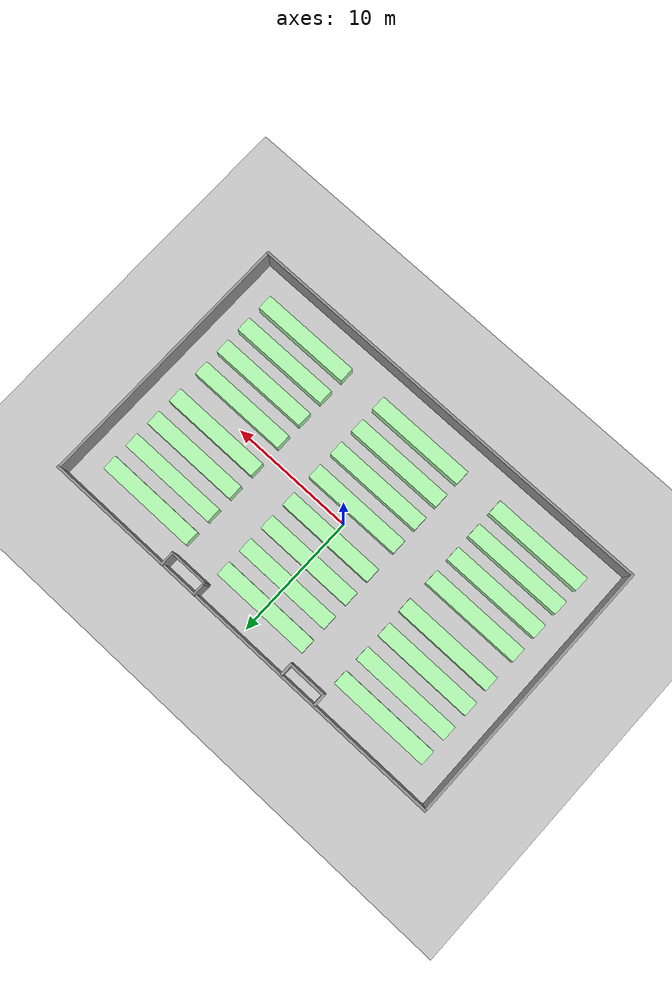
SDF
<sdf version="1.7">
 <world name="default">
  <light name="sun" type="directional">
   <pose>0 0 10 0 -0 0</pose>
   <diffuse>0.8 0.8 0.8 1</diffuse>
   <specular>0.2 0.2 0.2 1</specular>
   <attenuation>
    <range>1000</range>
    <constant>0.9</constant>
    <linear>0.01</linear>
    <quadratic>0.001</quadratic>
   </attenuation>
   <direction>-0.5 0.1 -0.9</direction>
   <spot><inner_angle>0</inner_angle><outer_angle>0</outer_angle><falloff>0</falloff></spot>
  </light>
  <model name="ground_plane">
   <static>1</static>
   <link name="link">
    <collision name="collision">
     <geometry><plane><normal>0 0 1</normal><size>100 100</size></plane></geometry>
     <surface>
      <contact><collide_bitmask>65535</collide_bitmask></contact>
      <friction><ode><mu>100</mu><mu2>50</mu2></ode></friction>
     </surface>
    </collision>
    <visual name="visual">
     <cast_shadows>0</cast_shadows>
     <geometry><plane><normal>0 0 1</normal><size>100 100</size></plane></geometry>
     <material>
      <script><uri>file://media/materials/scripts/gazebo.material</uri><name>Gazebo/Grey</name></script>
     </material>
    </visual>
   </link>
  </model>
  <gravity>0 0 -9.8</gravity>
  <magnetic_field>6e-06 2.3e-05 -4.2e-05</magnetic_field>
  <atmosphere type="adiabatic"/>
  <physics type="ode">
   <max_step_size>0.001</max_step_size>
   <real_time_factor>1</real_time_factor>
   <real_time_update_rate>1000</real_time_update_rate>
  </physics>
  <scene><ambient>0.4 0.4 0.4 1</ambient><background>0.7 0.7 0.7 1</background><shadows>1</shadows></scene>
  <spherical_coordinates>
   <surface_model>EARTH_WGS84</surface_model>
   <latitude_deg>0</latitude_deg>
   <longitude_deg>0</longitude_deg>
   <elevation>0</elevation>
   <heading_deg>0</heading_deg>
  </spherical_coordinates>
  <model name="Greenhouse_layout">
   <pose>0.020114 0 0 0 -0 0</pose>
   <link name="Wall_0">
    <collision name="Wall_0_Collision">
     <geometry><box><size>34.2 0.2 2</size></box></geometry>
     <pose>0 0 1 0 -0 0</pose>
    </collision>
    <visual name="Wall_0_Visual">
     <pose>0 0 1 0 -0 0</pose>
     <geometry><box><size>34.2 0.2 2</size></box></geometry>
     <material>
      <script><uri>file://media/materials/scripts/gazebo.material</uri><name>Gazebo/Grey</name></script>
      <ambient>1 1 1 1</ambient>
     </material>
     <meta><layer>0</layer></meta>
    </visual>
    <pose>-0.020114 -10.55 0 0 -0 0</pose>
   </link>
   <link name="Wall_14">
    <collision name="Wall_14_Collision">
     <geometry><box><size>1.05 0.2 2.5</size></box></geometry>
     <pose>0 0 1.25 0 -0 0</pose>
    </collision>
    <visual name="Wall_14_Visual">
     <pose>0 0 1.25 0 -0 0</pose>
     <geometry><box><size>1.05 0.2 2.5</size></box></geometry>
     <material>
      <script><uri>file://media/materials/scripts/gazebo.material</uri><name>Gazebo/Grey</name></script>
      <ambient>1 1 1 1</ambient>
     </material>
     <meta><layer>0</layer></meta>
    </visual>
    <pose>-7.00262 9.975 0 0 -0 1.5708</pose>
   </link>
   <link name="Wall_16">
    <collision name="Wall_16_Collision">
     <geometry><box><size>1.05 0.2 2.5</size></box></geometry>
     <pose>0 0 1.25 0 -0 0</pose>
    </collision>
    <visual name="Wall_16_Visual">
     <pose>0 0 1.25 0 -0 0</pose>
     <geometry><box><size>1.05 0.2 2.5</size></box></geometry>
     <material>
      <script><uri>file://media/materials/scripts/gazebo.material</uri><name>Gazebo/Grey</name></script>
      <ambient>1 1 1 1</ambient>
     </material>
     <meta><layer>0</layer></meta>
    </visual>
    <pose>-4.02011 9.975 0 0 -0 1.5708</pose>
   </link>
   <link name="Wall_18">
    <collision name="Wall_18_Collision">
     <geometry><box><size>3.15 0.15 2.5</size></box></geometry>
     <pose>0 0 1.25 0 -0 0</pose>
    </collision>
    <visual name="Wall_18_Visual">
     <pose>0 0 1.25 0 -0 0</pose>
     <geometry><box><size>3.15 0.15 2.5</size></box></geometry>
     <material>
      <script><uri>file://media/materials/scripts/gazebo.material</uri><name>Gazebo/Grey</name></script>
      <ambient>1 1 1 1</ambient>
     </material>
     <meta><layer>0</layer></meta>
    </visual>
    <pose>5.49738 9.5 0 0 -0 0</pose>
   </link>
   <link name="Wall_2">
    <collision name="Wall_2_Collision">
     <geometry><box><size>21.15 0.2 2</size></box></geometry>
     <pose>0 0 1 0 -0 0</pose>
    </collision>
    <visual name="Wall_2_Visual">
     <pose>0 0 1 0 -0 0</pose>
     <geometry><box><size>21.15 0.2 2</size></box></geometry>
     <material>
      <script><uri>file://media/materials/scripts/gazebo.material</uri><name>Gazebo/Grey</name></script>
      <ambient>1 1 1 1</ambient>
     </material>
     <meta><layer>0</layer></meta>
    </visual>
    <pose>-17.0201 -0.075 0 0 -0 1.5708</pose>
   </link>
   <link name="Wall_20">
    <collision name="Wall_20_Collision">
     <geometry><box><size>0.15 0.15 2.5</size></box></geometry>
     <pose>0 0 1.25 0 -0 0</pose>
    </collision>
    <visual name="Wall_20_Visual">
     <pose>0 0 1.25 0 -0 0</pose>
     <geometry><box><size>0.15 0.15 2.5</size></box></geometry>
     <material>
      <script><uri>file://media/materials/scripts/gazebo.material</uri><name>Gazebo/Grey</name></script>
      <ambient>1 1 1 1</ambient>
     </material>
     <meta><layer>0</layer></meta>
    </visual>
    <pose>3.97989 9.55 0 0 -0 0</pose>
   </link>
   <link name="Wall_4">
    <collision name="Wall_4_Collision">
     <geometry><box><size>34.2005 0.2 2</size></box></geometry>
     <pose>0 0 1 0 -0 0</pose>
    </collision>
    <visual name="Wall_4_Visual">
     <pose>0 0 1 0 -0 0</pose>
     <geometry><box><size>34.2005 0.2 2</size></box></geometry>
     <material>
      <script><uri>file://media/materials/scripts/gazebo.material</uri><name>Gazebo/Grey</name></script>
      <ambient>1 1 1 1</ambient>
     </material>
     <meta><layer>0</layer></meta>
    </visual>
    <pose>0.019886 10.55 0 0 -0 0</pose>
   </link>
   <link name="Wall_49">
    <collision name="Wall_49_Collision">
     <geometry><box><size>1.15 0.15 2.5</size></box></geometry>
     <pose>0 0 1.25 0 -0 0</pose>
    </collision>
    <visual name="Wall_49_Visual">
     <pose>0 0 1.25 0 -0 0</pose>
     <geometry><box><size>1.15 0.15 2.5</size></box></geometry>
     <material>
      <script><uri>file://media/materials/scripts/gazebo.material</uri><name>Gazebo/Grey</name></script>
      <ambient>1 1 1 1</ambient>
     </material>
     <meta><layer>0</layer></meta>
    </visual>
    <pose>6.97989 10.05 0 0 -0 1.5708</pose>
   </link>
   <link name="Wall_51">
    <collision name="Wall_51_Collision">
     <geometry><box><size>1.15 0.15 2.5</size></box></geometry>
     <pose>0 0 1.25 0 -0 0</pose>
    </collision>
    <visual name="Wall_51_Visual">
     <pose>0 0 1.25 0 -0 0</pose>
     <geometry><box><size>1.15 0.15 2.5</size></box></geometry>
     <material>
      <script><uri>file://media/materials/scripts/gazebo.material</uri><name>Gazebo/Grey</name></script>
      <ambient>1 1 1 1</ambient>
     </material>
     <meta><layer>0</layer></meta>
    </visual>
    <pose>3.97989 10.05 0 0 -0 1.5708</pose>
   </link>
   <link name="Wall_6">
    <collision name="Wall_6_Collision">
     <geometry><box><size>21.3 0.2 2</size></box></geometry>
     <pose>0 0 1 0 -0 0</pose>
    </collision>
    <visual name="Wall_6_Visual">
     <pose>0 0 1 0 -0 0</pose>
     <geometry><box><size>21.3 0.2 2</size></box></geometry>
     <material>
      <script><uri>file://media/materials/scripts/gazebo.material</uri><name>Gazebo/Grey</name></script>
      <ambient>1 1 1 1</ambient>
     </material>
     <meta><layer>0</layer></meta>
    </visual>
    <pose>16.9799 0 0 0 -0 1.5708</pose>
   </link>
   <link name="Wall_8">
    <collision name="Wall_8_Collision">
     <geometry><box><size>3.16502 0.2 2.5</size></box></geometry>
     <pose>0 0 1.25 0 -0 0</pose>
    </collision>
    <visual name="Wall_8_Visual">
     <pose>0 0 1.25 0 -0 0</pose>
     <geometry><box><size>3.16502 0.2 2.5</size></box></geometry>
     <material>
      <script><uri>file://media/materials/scripts/gazebo.material</uri><name>Gazebo/Grey</name></script>
      <ambient>1 1 1 1</ambient>
     </material>
     <meta><layer>0</layer></meta>
    </visual>
    <pose>-5.50262 9.55 0 0 -0 0</pose>
   </link>
   <static>1</static>
  </model>
  <model name="carril_normal">
   <link name="link_0">
    <inertial>
     <mass>100</mass>
     <inertia><ixx>16.6667</ixx><ixy>0</ixy><ixz>0</ixz><iyy>16.6667</iyy><iyz>0</iyz><izz>16.6667</izz></inertia>
    </inertial>
    <visual name="visual">
     <geometry><box><size>8 1.2 1</size></box></geometry>
     <material>
      <lighting>1</lighting>
      <script><uri>file://media/materials/scripts/gazebo.material</uri><name>Gazebo/Grey</name></script>
      <shader type="pixel"><normal_map>__default__</normal_map></shader>
      <ambient>0.3 0.3 0.3 1</ambient>
      <diffuse>0.7 1 0.7 1</diffuse>
      <specular>0.01 1 0.01 1</specular>
      <emissive>0 1 0 1</emissive>
     </material>
    </visual>
    <collision name="collision">
     <geometry><box><size>8 1.2 1</size></box></geometry>
     <surface>
      <friction>
       <ode><mu>1</mu><mu2>1</mu2><fdir1>0 0 0</fdir1><slip1>0</slip1><slip2>0</slip2></ode>
       <torsional>
        <coefficient>1</coefficient>
        <patch_radius>0</patch_radius>
        <surface_radius>0</surface_radius>
        <use_patch_radius>1</use_patch_radius>
        <ode><slip>0</slip></ode>
       </torsional>
      </friction>
      <bounce><restitution_coefficient>0</restitution_coefficient><threshold>1e+06</threshold></bounce>
      <contact>
       <collide_without_contact>0</collide_without_contact>
       <collide_without_contact_bitmask>1</collide_without_contact_bitmask>
       <collide_bitmask>1</collide_bitmask>
       <ode>
        <soft_cfm>0</soft_cfm>
        <soft_erp>0.2</soft_erp>
        <kp>1e+13</kp>
        <kd>1</kd>
        <max_vel>0.01</max_vel>
        <min_depth>0</min_depth>
       </ode>
       <bullet>
        <split_impulse>1</split_impulse>
        <split_impulse_penetration_threshold>-0.01</split_impulse_penetration_threshold>
        <soft_cfm>0</soft_cfm>
        <soft_erp>0.2</soft_erp>
        <kp>1e+13</kp>
        <kd>1</kd>
       </bullet>
      </contact>
     </surface>
    </collision>
   </link>
   <static>0</static>
   <pose>-11 -7.95 0.5 0 -0 0</pose>
  </model>
  <model name="carril_normal_clone">
   <link name="link_0">
    <inertial>
     <mass>100</mass>
     <inertia><ixx>16.6667</ixx><ixy>0</ixy><ixz>0</ixz><iyy>16.6667</iyy><iyz>0</iyz><izz>16.6667</izz></inertia>
    </inertial>
    <visual name="visual">
     <geometry><box><size>8 1.2 1</size></box></geometry>
     <material>
      <lighting>1</lighting>
      <script><uri>file://media/materials/scripts/gazebo.material</uri><name>Gazebo/Grey</name></script>
      <shader type="pixel"><normal_map>__default__</normal_map></shader>
      <ambient>0.3 0.3 0.3 1</ambient>
      <diffuse>0.7 1 0.7 1</diffuse>
      <specular>0.01 1 0.01 1</specular>
      <emissive>0 1 0 1</emissive>
     </material>
    </visual>
    <collision name="collision">
     <geometry><box><size>8 1.2 1</size></box></geometry>
     <surface>
      <friction>
       <ode><mu>1</mu><mu2>1</mu2><fdir1>0 0 0</fdir1><slip1>0</slip1><slip2>0</slip2></ode>
       <torsional>
        <coefficient>1</coefficient>
        <patch_radius>0</patch_radius>
        <surface_radius>0</surface_radius>
        <use_patch_radius>1</use_patch_radius>
        <ode><slip>0</slip></ode>
       </torsional>
      </friction>
      <bounce><restitution_coefficient>0</restitution_coefficient><threshold>1e+06</threshold></bounce>
      <contact>
       <collide_without_contact>0</collide_without_contact>
       <collide_without_contact_bitmask>1</collide_without_contact_bitmask>
       <collide_bitmask>1</collide_bitmask>
       <ode>
        <soft_cfm>0</soft_cfm>
        <soft_erp>0.2</soft_erp>
        <kp>1e+13</kp>
        <kd>1</kd>
        <max_vel>0.01</max_vel>
        <min_depth>0</min_depth>
       </ode>
       <bullet>
        <split_impulse>1</split_impulse>
        <split_impulse_penetration_threshold>-0.01</split_impulse_penetration_threshold>
        <soft_cfm>0</soft_cfm>
        <soft_erp>0.2</soft_erp>
        <kp>1e+13</kp>
        <kd>1</kd>
       </bullet>
      </contact>
     </surface>
    </collision>
   </link>
   <static>0</static>
   <pose>-11 7.95 0.5 0 -0 0</pose>
  </model>
  <model name="carril_normal_clone_0">
   <link name="link_0">
    <inertial>
     <mass>100</mass>
     <inertia><ixx>16.6667</ixx><ixy>0</ixy><ixz>0</ixz><iyy>16.6667</iyy><iyz>0</iyz><izz>16.6667</izz></inertia>
    </inertial>
    <visual name="visual">
     <geometry><box><size>8 1.2 1</size></box></geometry>
     <material>
      <lighting>1</lighting>
      <script><uri>file://media/materials/scripts/gazebo.material</uri><name>Gazebo/Grey</name></script>
      <shader type="pixel"><normal_map>__default__</normal_map></shader>
      <ambient>0.3 0.3 0.3 1</ambient>
      <diffuse>0.7 1 0.7 1</diffuse>
      <specular>0.01 1 0.01 1</specular>
      <emissive>0 1 0 1</emissive>
     </material>
    </visual>
    <collision name="collision">
     <geometry><box><size>8 1.2 1</size></box></geometry>
     <surface>
      <friction>
       <ode><mu>1</mu><mu2>1</mu2><fdir1>0 0 0</fdir1><slip1>0</slip1><slip2>0</slip2></ode>
       <torsional>
        <coefficient>1</coefficient>
        <patch_radius>0</patch_radius>
        <surface_radius>0</surface_radius>
        <use_patch_radius>1</use_patch_radius>
        <ode><slip>0</slip></ode>
       </torsional>
      </friction>
      <bounce><restitution_coefficient>0</restitution_coefficient><threshold>1e+06</threshold></bounce>
      <contact>
       <collide_without_contact>0</collide_without_contact>
       <collide_without_contact_bitmask>1</collide_without_contact_bitmask>
       <collide_bitmask>1</collide_bitmask>
       <ode>
        <soft_cfm>0</soft_cfm>
        <soft_erp>0.2</soft_erp>
        <kp>1e+13</kp>
        <kd>1</kd>
        <max_vel>0.01</max_vel>
        <min_depth>0</min_depth>
       </ode>
       <bullet>
        <split_impulse>1</split_impulse>
        <split_impulse_penetration_threshold>-0.01</split_impulse_penetration_threshold>
        <soft_cfm>0</soft_cfm>
        <soft_erp>0.2</soft_erp>
        <kp>1e+13</kp>
        <kd>1</kd>
       </bullet>
      </contact>
     </surface>
    </collision>
   </link>
   <static>0</static>
   <pose>-11 5.75 0.5 0 -0 0</pose>
  </model>
  <model name="carril_normal_clone_0_clone">
   <link name="link_0">
    <inertial>
     <mass>100</mass>
     <inertia><ixx>16.6667</ixx><ixy>0</ixy><ixz>0</ixz><iyy>16.6667</iyy><iyz>0</iyz><izz>16.6667</izz></inertia>
    </inertial>
    <visual name="visual">
     <geometry><box><size>8 1.2 1</size></box></geometry>
     <material>
      <lighting>1</lighting>
      <script><uri>file://media/materials/scripts/gazebo.material</uri><name>Gazebo/Grey</name></script>
      <shader type="pixel"><normal_map>__default__</normal_map></shader>
      <ambient>0.3 0.3 0.3 1</ambient>
      <diffuse>0.7 1 0.7 1</diffuse>
      <specular>0.01 1 0.01 1</specular>
      <emissive>0 1 0 1</emissive>
     </material>
    </visual>
    <collision name="collision">
     <geometry><box><size>8 1.2 1</size></box></geometry>
     <surface>
      <friction>
       <ode><mu>1</mu><mu2>1</mu2><fdir1>0 0 0</fdir1><slip1>0</slip1><slip2>0</slip2></ode>
       <torsional>
        <coefficient>1</coefficient>
        <patch_radius>0</patch_radius>
        <surface_radius>0</surface_radius>
        <use_patch_radius>1</use_patch_radius>
        <ode><slip>0</slip></ode>
       </torsional>
      </friction>
      <bounce><restitution_coefficient>0</restitution_coefficient><threshold>1e+06</threshold></bounce>
      <contact>
       <collide_without_contact>0</collide_without_contact>
       <collide_without_contact_bitmask>1</collide_without_contact_bitmask>
       <collide_bitmask>1</collide_bitmask>
       <ode>
        <soft_cfm>0</soft_cfm>
        <soft_erp>0.2</soft_erp>
        <kp>1e+13</kp>
        <kd>1</kd>
        <max_vel>0.01</max_vel>
        <min_depth>0</min_depth>
       </ode>
       <bullet>
        <split_impulse>1</split_impulse>
        <split_impulse_penetration_threshold>-0.01</split_impulse_penetration_threshold>
        <soft_cfm>0</soft_cfm>
        <soft_erp>0.2</soft_erp>
        <kp>1e+13</kp>
        <kd>1</kd>
       </bullet>
      </contact>
     </surface>
    </collision>
   </link>
   <static>0</static>
   <pose>-11 3.55 0.5 0 -0 0</pose>
  </model>
  <model name="carril_normal_clone_0_clone_clone">
   <link name="link_0">
    <inertial>
     <mass>100</mass>
     <inertia><ixx>16.6667</ixx><ixy>0</ixy><ixz>0</ixz><iyy>16.6667</iyy><iyz>0</iyz><izz>16.6667</izz></inertia>
    </inertial>
    <visual name="visual">
     <geometry><box><size>8 1.2 1</size></box></geometry>
     <material>
      <lighting>1</lighting>
      <script><uri>file://media/materials/scripts/gazebo.material</uri><name>Gazebo/Grey</name></script>
      <shader type="pixel"><normal_map>__default__</normal_map></shader>
      <ambient>0.3 0.3 0.3 1</ambient>
      <diffuse>0.7 1 0.7 1</diffuse>
      <specular>0.01 1 0.01 1</specular>
      <emissive>0 1 0 1</emissive>
     </material>
    </visual>
    <collision name="collision">
     <geometry><box><size>8 1.2 1</size></box></geometry>
     <surface>
      <friction>
       <ode><mu>1</mu><mu2>1</mu2><fdir1>0 0 0</fdir1><slip1>0</slip1><slip2>0</slip2></ode>
       <torsional>
        <coefficient>1</coefficient>
        <patch_radius>0</patch_radius>
        <surface_radius>0</surface_radius>
        <use_patch_radius>1</use_patch_radius>
        <ode><slip>0</slip></ode>
       </torsional>
      </friction>
      <bounce><restitution_coefficient>0</restitution_coefficient><threshold>1e+06</threshold></bounce>
      <contact>
       <collide_without_contact>0</collide_without_contact>
       <collide_without_contact_bitmask>1</collide_without_contact_bitmask>
       <collide_bitmask>1</collide_bitmask>
       <ode>
        <soft_cfm>0</soft_cfm>
        <soft_erp>0.2</soft_erp>
        <kp>1e+13</kp>
        <kd>1</kd>
        <max_vel>0.01</max_vel>
        <min_depth>0</min_depth>
       </ode>
       <bullet>
        <split_impulse>1</split_impulse>
        <split_impulse_penetration_threshold>-0.01</split_impulse_penetration_threshold>
        <soft_cfm>0</soft_cfm>
        <soft_erp>0.2</soft_erp>
        <kp>1e+13</kp>
        <kd>1</kd>
       </bullet>
      </contact>
     </surface>
    </collision>
   </link>
   <static>0</static>
   <pose>-10.9264 1.35 0.5 0 -0 0</pose>
  </model>
  <model name="carril_normal_clone_0_clone_clone_clone">
   <link name="link_0">
    <inertial>
     <mass>100</mass>
     <inertia><ixx>16.6667</ixx><ixy>0</ixy><ixz>0</ixz><iyy>16.6667</iyy><iyz>0</iyz><izz>16.6667</izz></inertia>
    </inertial>
    <visual name="visual">
     <geometry><box><size>8 1.2 1</size></box></geometry>
     <material>
      <lighting>1</lighting>
      <script><uri>file://media/materials/scripts/gazebo.material</uri><name>Gazebo/Grey</name></script>
      <shader type="pixel"><normal_map>__default__</normal_map></shader>
      <ambient>0.3 0.3 0.3 1</ambient>
      <diffuse>0.7 1 0.7 1</diffuse>
      <specular>0.01 1 0.01 1</specular>
      <emissive>0 1 0 1</emissive>
     </material>
    </visual>
    <collision name="collision">
     <geometry><box><size>8 1.2 1</size></box></geometry>
     <surface>
      <friction>
       <ode><mu>1</mu><mu2>1</mu2><fdir1>0 0 0</fdir1><slip1>0</slip1><slip2>0</slip2></ode>
       <torsional>
        <coefficient>1</coefficient>
        <patch_radius>0</patch_radius>
        <surface_radius>0</surface_radius>
        <use_patch_radius>1</use_patch_radius>
        <ode><slip>0</slip></ode>
       </torsional>
      </friction>
      <bounce><restitution_coefficient>0</restitution_coefficient><threshold>1e+06</threshold></bounce>
      <contact>
       <collide_without_contact>0</collide_without_contact>
       <collide_without_contact_bitmask>1</collide_without_contact_bitmask>
       <collide_bitmask>1</collide_bitmask>
       <ode>
        <soft_cfm>0</soft_cfm>
        <soft_erp>0.2</soft_erp>
        <kp>1e+13</kp>
        <kd>1</kd>
        <max_vel>0.01</max_vel>
        <min_depth>0</min_depth>
       </ode>
       <bullet>
        <split_impulse>1</split_impulse>
        <split_impulse_penetration_threshold>-0.01</split_impulse_penetration_threshold>
        <soft_cfm>0</soft_cfm>
        <soft_erp>0.2</soft_erp>
        <kp>1e+13</kp>
        <kd>1</kd>
       </bullet>
      </contact>
     </surface>
    </collision>
   </link>
   <static>0</static>
   <pose>-11 -1.35 0.5 0 -0 0</pose>
  </model>
  <model name="carril_normal_clone_0_clone_clone_clone_clone">
   <link name="link_0">
    <inertial>
     <mass>100</mass>
     <inertia><ixx>16.6667</ixx><ixy>0</ixy><ixz>0</ixz><iyy>16.6667</iyy><iyz>0</iyz><izz>16.6667</izz></inertia>
    </inertial>
    <visual name="visual">
     <geometry><box><size>8 1.2 1</size></box></geometry>
     <material>
      <lighting>1</lighting>
      <script><uri>file://media/materials/scripts/gazebo.material</uri><name>Gazebo/Grey</name></script>
      <shader type="pixel"><normal_map>__default__</normal_map></shader>
      <ambient>0.3 0.3 0.3 1</ambient>
      <diffuse>0.7 1 0.7 1</diffuse>
      <specular>0.01 1 0.01 1</specular>
      <emissive>0 1 0 1</emissive>
     </material>
    </visual>
    <collision name="collision">
     <geometry><box><size>8 1.2 1</size></box></geometry>
     <surface>
      <friction>
       <ode><mu>1</mu><mu2>1</mu2><fdir1>0 0 0</fdir1><slip1>0</slip1><slip2>0</slip2></ode>
       <torsional>
        <coefficient>1</coefficient>
        <patch_radius>0</patch_radius>
        <surface_radius>0</surface_radius>
        <use_patch_radius>1</use_patch_radius>
        <ode><slip>0</slip></ode>
       </torsional>
      </friction>
      <bounce><restitution_coefficient>0</restitution_coefficient><threshold>1e+06</threshold></bounce>
      <contact>
       <collide_without_contact>0</collide_without_contact>
       <collide_without_contact_bitmask>1</collide_without_contact_bitmask>
       <collide_bitmask>1</collide_bitmask>
       <ode>
        <soft_cfm>0</soft_cfm>
        <soft_erp>0.2</soft_erp>
        <kp>1e+13</kp>
        <kd>1</kd>
        <max_vel>0.01</max_vel>
        <min_depth>0</min_depth>
       </ode>
       <bullet>
        <split_impulse>1</split_impulse>
        <split_impulse_penetration_threshold>-0.01</split_impulse_penetration_threshold>
        <soft_cfm>0</soft_cfm>
        <soft_erp>0.2</soft_erp>
        <kp>1e+13</kp>
        <kd>1</kd>
       </bullet>
      </contact>
     </surface>
    </collision>
   </link>
   <static>0</static>
   <pose>-11 -3.55 0.5 0 -0 0</pose>
  </model>
  <model name="carril_normal_clone_0_clone_clone_clone_clone_0">
   <link name="link_0">
    <inertial>
     <mass>100</mass>
     <inertia><ixx>16.6667</ixx><ixy>0</ixy><ixz>0</ixz><iyy>16.6667</iyy><iyz>0</iyz><izz>16.6667</izz></inertia>
    </inertial>
    <visual name="visual">
     <geometry><box><size>8 1.2 1</size></box></geometry>
     <material>
      <lighting>1</lighting>
      <script><uri>file://media/materials/scripts/gazebo.material</uri><name>Gazebo/Grey</name></script>
      <shader type="pixel"><normal_map>__default__</normal_map></shader>
      <ambient>0.3 0.3 0.3 1</ambient>
      <diffuse>0.7 1 0.7 1</diffuse>
      <specular>0.01 1 0.01 1</specular>
      <emissive>0 1 0 1</emissive>
     </material>
    </visual>
    <collision name="collision">
     <geometry><box><size>8 1.2 1</size></box></geometry>
     <surface>
      <friction>
       <ode><mu>1</mu><mu2>1</mu2><fdir1>0 0 0</fdir1><slip1>0</slip1><slip2>0</slip2></ode>
       <torsional>
        <coefficient>1</coefficient>
        <patch_radius>0</patch_radius>
        <surface_radius>0</surface_radius>
        <use_patch_radius>1</use_patch_radius>
        <ode><slip>0</slip></ode>
       </torsional>
      </friction>
      <bounce><restitution_coefficient>0</restitution_coefficient><threshold>1e+06</threshold></bounce>
      <contact>
       <collide_without_contact>0</collide_without_contact>
       <collide_without_contact_bitmask>1</collide_without_contact_bitmask>
       <collide_bitmask>1</collide_bitmask>
       <ode>
        <soft_cfm>0</soft_cfm>
        <soft_erp>0.2</soft_erp>
        <kp>1e+13</kp>
        <kd>1</kd>
        <max_vel>0.01</max_vel>
        <min_depth>0</min_depth>
       </ode>
       <bullet>
        <split_impulse>1</split_impulse>
        <split_impulse_penetration_threshold>-0.01</split_impulse_penetration_threshold>
        <soft_cfm>0</soft_cfm>
        <soft_erp>0.2</soft_erp>
        <kp>1e+13</kp>
        <kd>1</kd>
       </bullet>
      </contact>
     </surface>
    </collision>
   </link>
   <static>0</static>
   <pose>-11 -5.75 0.5 0 -0 0</pose>
  </model>
  <model name="carril_normal_clone_clone">
   <link name="link_0">
    <inertial>
     <mass>100</mass>
     <inertia><ixx>16.6667</ixx><ixy>0</ixy><ixz>0</ixz><iyy>16.6667</iyy><iyz>0</iyz><izz>16.6667</izz></inertia>
    </inertial>
    <visual name="visual">
     <geometry><box><size>8 1.2 1</size></box></geometry>
     <material>
      <lighting>1</lighting>
      <script><uri>file://media/materials/scripts/gazebo.material</uri><name>Gazebo/Grey</name></script>
      <shader type="pixel"><normal_map>__default__</normal_map></shader>
      <ambient>0.3 0.3 0.3 1</ambient>
      <diffuse>0.7 1 0.7 1</diffuse>
      <specular>0.01 1 0.01 1</specular>
      <emissive>0 1 0 1</emissive>
     </material>
    </visual>
    <collision name="collision">
     <geometry><box><size>8 1.2 1</size></box></geometry>
     <surface>
      <friction>
       <ode><mu>1</mu><mu2>1</mu2><fdir1>0 0 0</fdir1><slip1>0</slip1><slip2>0</slip2></ode>
       <torsional>
        <coefficient>1</coefficient>
        <patch_radius>0</patch_radius>
        <surface_radius>0</surface_radius>
        <use_patch_radius>1</use_patch_radius>
        <ode><slip>0</slip></ode>
       </torsional>
      </friction>
      <bounce><restitution_coefficient>0</restitution_coefficient><threshold>1e+06</threshold></bounce>
      <contact>
       <collide_without_contact>0</collide_without_contact>
       <collide_without_contact_bitmask>1</collide_without_contact_bitmask>
       <collide_bitmask>1</collide_bitmask>
       <ode>
        <soft_cfm>0</soft_cfm>
        <soft_erp>0.2</soft_erp>
        <kp>1e+13</kp>
        <kd>1</kd>
        <max_vel>0.01</max_vel>
        <min_depth>0</min_depth>
       </ode>
       <bullet>
        <split_impulse>1</split_impulse>
        <split_impulse_penetration_threshold>-0.01</split_impulse_penetration_threshold>
        <soft_cfm>0</soft_cfm>
        <soft_erp>0.2</soft_erp>
        <kp>1e+13</kp>
        <kd>1</kd>
       </bullet>
      </contact>
     </surface>
    </collision>
   </link>
   <static>0</static>
   <pose>0 7.95 0.5 0 -0 0</pose>
  </model>
  <model name="carril_normal_clone_0_clone_0">
   <link name="link_0">
    <inertial>
     <mass>100</mass>
     <inertia><ixx>16.6667</ixx><ixy>0</ixy><ixz>0</ixz><iyy>16.6667</iyy><iyz>0</iyz><izz>16.6667</izz></inertia>
    </inertial>
    <visual name="visual">
     <geometry><box><size>8 1.2 1</size></box></geometry>
     <material>
      <lighting>1</lighting>
      <script><uri>file://media/materials/scripts/gazebo.material</uri><name>Gazebo/Grey</name></script>
      <shader type="pixel"><normal_map>__default__</normal_map></shader>
      <ambient>0.3 0.3 0.3 1</ambient>
      <diffuse>0.7 1 0.7 1</diffuse>
      <specular>0.01 1 0.01 1</specular>
      <emissive>0 1 0 1</emissive>
     </material>
    </visual>
    <collision name="collision">
     <geometry><box><size>8 1.2 1</size></box></geometry>
     <surface>
      <friction>
       <ode><mu>1</mu><mu2>1</mu2><fdir1>0 0 0</fdir1><slip1>0</slip1><slip2>0</slip2></ode>
       <torsional>
        <coefficient>1</coefficient>
        <patch_radius>0</patch_radius>
        <surface_radius>0</surface_radius>
        <use_patch_radius>1</use_patch_radius>
        <ode><slip>0</slip></ode>
       </torsional>
      </friction>
      <bounce><restitution_coefficient>0</restitution_coefficient><threshold>1e+06</threshold></bounce>
      <contact>
       <collide_without_contact>0</collide_without_contact>
       <collide_without_contact_bitmask>1</collide_without_contact_bitmask>
       <collide_bitmask>1</collide_bitmask>
       <ode>
        <soft_cfm>0</soft_cfm>
        <soft_erp>0.2</soft_erp>
        <kp>1e+13</kp>
        <kd>1</kd>
        <max_vel>0.01</max_vel>
        <min_depth>0</min_depth>
       </ode>
       <bullet>
        <split_impulse>1</split_impulse>
        <split_impulse_penetration_threshold>-0.01</split_impulse_penetration_threshold>
        <soft_cfm>0</soft_cfm>
        <soft_erp>0.2</soft_erp>
        <kp>1e+13</kp>
        <kd>1</kd>
       </bullet>
      </contact>
     </surface>
    </collision>
   </link>
   <static>0</static>
   <pose>0 5.75 0.5 0 -0 0</pose>
  </model>
  <model name="carril_normal_clone_0_clone_clone_0">
   <link name="link_0">
    <inertial>
     <mass>100</mass>
     <inertia><ixx>16.6667</ixx><ixy>0</ixy><ixz>0</ixz><iyy>16.6667</iyy><iyz>0</iyz><izz>16.6667</izz></inertia>
    </inertial>
    <visual name="visual">
     <geometry><box><size>8 1.2 1</size></box></geometry>
     <material>
      <lighting>1</lighting>
      <script><uri>file://media/materials/scripts/gazebo.material</uri><name>Gazebo/Grey</name></script>
      <shader type="pixel"><normal_map>__default__</normal_map></shader>
      <ambient>0.3 0.3 0.3 1</ambient>
      <diffuse>0.7 1 0.7 1</diffuse>
      <specular>0.01 1 0.01 1</specular>
      <emissive>0 1 0 1</emissive>
     </material>
    </visual>
    <collision name="collision">
     <geometry><box><size>8 1.2 1</size></box></geometry>
     <surface>
      <friction>
       <ode><mu>1</mu><mu2>1</mu2><fdir1>0 0 0</fdir1><slip1>0</slip1><slip2>0</slip2></ode>
       <torsional>
        <coefficient>1</coefficient>
        <patch_radius>0</patch_radius>
        <surface_radius>0</surface_radius>
        <use_patch_radius>1</use_patch_radius>
        <ode><slip>0</slip></ode>
       </torsional>
      </friction>
      <bounce><restitution_coefficient>0</restitution_coefficient><threshold>1e+06</threshold></bounce>
      <contact>
       <collide_without_contact>0</collide_without_contact>
       <collide_without_contact_bitmask>1</collide_without_contact_bitmask>
       <collide_bitmask>1</collide_bitmask>
       <ode>
        <soft_cfm>0</soft_cfm>
        <soft_erp>0.2</soft_erp>
        <kp>1e+13</kp>
        <kd>1</kd>
        <max_vel>0.01</max_vel>
        <min_depth>0</min_depth>
       </ode>
       <bullet>
        <split_impulse>1</split_impulse>
        <split_impulse_penetration_threshold>-0.01</split_impulse_penetration_threshold>
        <soft_cfm>0</soft_cfm>
        <soft_erp>0.2</soft_erp>
        <kp>1e+13</kp>
        <kd>1</kd>
       </bullet>
      </contact>
     </surface>
    </collision>
   </link>
   <static>0</static>
   <pose>0 3.55 0.5 0 -0 0</pose>
  </model>
  <model name="carril_normal_clone_0_clone_clone_clone_0">
   <link name="link_0">
    <inertial>
     <mass>100</mass>
     <inertia><ixx>16.6667</ixx><ixy>0</ixy><ixz>0</ixz><iyy>16.6667</iyy><iyz>0</iyz><izz>16.6667</izz></inertia>
    </inertial>
    <visual name="visual">
     <geometry><box><size>8 1.2 1</size></box></geometry>
     <material>
      <lighting>1</lighting>
      <script><uri>file://media/materials/scripts/gazebo.material</uri><name>Gazebo/Grey</name></script>
      <shader type="pixel"><normal_map>__default__</normal_map></shader>
      <ambient>0.3 0.3 0.3 1</ambient>
      <diffuse>0.7 1 0.7 1</diffuse>
      <specular>0.01 1 0.01 1</specular>
      <emissive>0 1 0 1</emissive>
     </material>
    </visual>
    <collision name="collision">
     <geometry><box><size>8 1.2 1</size></box></geometry>
     <surface>
      <friction>
       <ode><mu>1</mu><mu2>1</mu2><fdir1>0 0 0</fdir1><slip1>0</slip1><slip2>0</slip2></ode>
       <torsional>
        <coefficient>1</coefficient>
        <patch_radius>0</patch_radius>
        <surface_radius>0</surface_radius>
        <use_patch_radius>1</use_patch_radius>
        <ode><slip>0</slip></ode>
       </torsional>
      </friction>
      <bounce><restitution_coefficient>0</restitution_coefficient><threshold>1e+06</threshold></bounce>
      <contact>
       <collide_without_contact>0</collide_without_contact>
       <collide_without_contact_bitmask>1</collide_without_contact_bitmask>
       <collide_bitmask>1</collide_bitmask>
       <ode>
        <soft_cfm>0</soft_cfm>
        <soft_erp>0.2</soft_erp>
        <kp>1e+13</kp>
        <kd>1</kd>
        <max_vel>0.01</max_vel>
        <min_depth>0</min_depth>
       </ode>
       <bullet>
        <split_impulse>1</split_impulse>
        <split_impulse_penetration_threshold>-0.01</split_impulse_penetration_threshold>
        <soft_cfm>0</soft_cfm>
        <soft_erp>0.2</soft_erp>
        <kp>1e+13</kp>
        <kd>1</kd>
       </bullet>
      </contact>
     </surface>
    </collision>
   </link>
   <static>0</static>
   <pose>0 1.35 0.5 0 -0 0</pose>
  </model>
  <model name="carril_normal_clone_0_clone_clone_clone_clone_1">
   <link name="link_0">
    <inertial>
     <mass>100</mass>
     <inertia><ixx>16.6667</ixx><ixy>0</ixy><ixz>0</ixz><iyy>16.6667</iyy><iyz>0</iyz><izz>16.6667</izz></inertia>
    </inertial>
    <visual name="visual">
     <geometry><box><size>8 1.2 1</size></box></geometry>
     <material>
      <lighting>1</lighting>
      <script><uri>file://media/materials/scripts/gazebo.material</uri><name>Gazebo/Grey</name></script>
      <shader type="pixel"><normal_map>__default__</normal_map></shader>
      <ambient>0.3 0.3 0.3 1</ambient>
      <diffuse>0.7 1 0.7 1</diffuse>
      <specular>0.01 1 0.01 1</specular>
      <emissive>0 1 0 1</emissive>
     </material>
    </visual>
    <collision name="collision">
     <geometry><box><size>8 1.2 1</size></box></geometry>
     <surface>
      <friction>
       <ode><mu>1</mu><mu2>1</mu2><fdir1>0 0 0</fdir1><slip1>0</slip1><slip2>0</slip2></ode>
       <torsional>
        <coefficient>1</coefficient>
        <patch_radius>0</patch_radius>
        <surface_radius>0</surface_radius>
        <use_patch_radius>1</use_patch_radius>
        <ode><slip>0</slip></ode>
       </torsional>
      </friction>
      <bounce><restitution_coefficient>0</restitution_coefficient><threshold>1e+06</threshold></bounce>
      <contact>
       <collide_without_contact>0</collide_without_contact>
       <collide_without_contact_bitmask>1</collide_without_contact_bitmask>
       <collide_bitmask>1</collide_bitmask>
       <ode>
        <soft_cfm>0</soft_cfm>
        <soft_erp>0.2</soft_erp>
        <kp>1e+13</kp>
        <kd>1</kd>
        <max_vel>0.01</max_vel>
        <min_depth>0</min_depth>
       </ode>
       <bullet>
        <split_impulse>1</split_impulse>
        <split_impulse_penetration_threshold>-0.01</split_impulse_penetration_threshold>
        <soft_cfm>0</soft_cfm>
        <soft_erp>0.2</soft_erp>
        <kp>1e+13</kp>
        <kd>1</kd>
       </bullet>
      </contact>
     </surface>
    </collision>
   </link>
   <static>0</static>
   <pose>0 -1.35 0.5 0 -0 0</pose>
  </model>
  <model name="carril_normal_clone_0_clone_clone_clone_clone_clone">
   <link name="link_0">
    <inertial>
     <mass>100</mass>
     <inertia><ixx>16.6667</ixx><ixy>0</ixy><ixz>0</ixz><iyy>16.6667</iyy><iyz>0</iyz><izz>16.6667</izz></inertia>
    </inertial>
    <visual name="visual">
     <geometry><box><size>8 1.2 1</size></box></geometry>
     <material>
      <lighting>1</lighting>
      <script><uri>file://media/materials/scripts/gazebo.material</uri><name>Gazebo/Grey</name></script>
      <shader type="pixel"><normal_map>__default__</normal_map></shader>
      <ambient>0.3 0.3 0.3 1</ambient>
      <diffuse>0.7 1 0.7 1</diffuse>
      <specular>0.01 1 0.01 1</specular>
      <emissive>0 1 0 1</emissive>
     </material>
    </visual>
    <collision name="collision">
     <geometry><box><size>8 1.2 1</size></box></geometry>
     <surface>
      <friction>
       <ode><mu>1</mu><mu2>1</mu2><fdir1>0 0 0</fdir1><slip1>0</slip1><slip2>0</slip2></ode>
       <torsional>
        <coefficient>1</coefficient>
        <patch_radius>0</patch_radius>
        <surface_radius>0</surface_radius>
        <use_patch_radius>1</use_patch_radius>
        <ode><slip>0</slip></ode>
       </torsional>
      </friction>
      <bounce><restitution_coefficient>0</restitution_coefficient><threshold>1e+06</threshold></bounce>
      <contact>
       <collide_without_contact>0</collide_without_contact>
       <collide_without_contact_bitmask>1</collide_without_contact_bitmask>
       <collide_bitmask>1</collide_bitmask>
       <ode>
        <soft_cfm>0</soft_cfm>
        <soft_erp>0.2</soft_erp>
        <kp>1e+13</kp>
        <kd>1</kd>
        <max_vel>0.01</max_vel>
        <min_depth>0</min_depth>
       </ode>
       <bullet>
        <split_impulse>1</split_impulse>
        <split_impulse_penetration_threshold>-0.01</split_impulse_penetration_threshold>
        <soft_cfm>0</soft_cfm>
        <soft_erp>0.2</soft_erp>
        <kp>1e+13</kp>
        <kd>1</kd>
       </bullet>
      </contact>
     </surface>
    </collision>
   </link>
   <static>0</static>
   <pose>0 -3.55 0.5 0 -0 0</pose>
  </model>
  <model name="carril_normal_clone_0_clone_clone_clone_clone_0_clone">
   <link name="link_0">
    <inertial>
     <mass>100</mass>
     <inertia><ixx>16.6667</ixx><ixy>0</ixy><ixz>0</ixz><iyy>16.6667</iyy><iyz>0</iyz><izz>16.6667</izz></inertia>
    </inertial>
    <visual name="visual">
     <geometry><box><size>8 1.2 1</size></box></geometry>
     <material>
      <lighting>1</lighting>
      <script><uri>file://media/materials/scripts/gazebo.material</uri><name>Gazebo/Grey</name></script>
      <shader type="pixel"><normal_map>__default__</normal_map></shader>
      <ambient>0.3 0.3 0.3 1</ambient>
      <diffuse>0.7 1 0.7 1</diffuse>
      <specular>0.01 1 0.01 1</specular>
      <emissive>0 1 0 1</emissive>
     </material>
    </visual>
    <collision name="collision">
     <geometry><box><size>8 1.2 1</size></box></geometry>
     <surface>
      <friction>
       <ode><mu>1</mu><mu2>1</mu2><fdir1>0 0 0</fdir1><slip1>0</slip1><slip2>0</slip2></ode>
       <torsional>
        <coefficient>1</coefficient>
        <patch_radius>0</patch_radius>
        <surface_radius>0</surface_radius>
        <use_patch_radius>1</use_patch_radius>
        <ode><slip>0</slip></ode>
       </torsional>
      </friction>
      <bounce><restitution_coefficient>0</restitution_coefficient><threshold>1e+06</threshold></bounce>
      <contact>
       <collide_without_contact>0</collide_without_contact>
       <collide_without_contact_bitmask>1</collide_without_contact_bitmask>
       <collide_bitmask>1</collide_bitmask>
       <ode>
        <soft_cfm>0</soft_cfm>
        <soft_erp>0.2</soft_erp>
        <kp>1e+13</kp>
        <kd>1</kd>
        <max_vel>0.01</max_vel>
        <min_depth>0</min_depth>
       </ode>
       <bullet>
        <split_impulse>1</split_impulse>
        <split_impulse_penetration_threshold>-0.01</split_impulse_penetration_threshold>
        <soft_cfm>0</soft_cfm>
        <soft_erp>0.2</soft_erp>
        <kp>1e+13</kp>
        <kd>1</kd>
       </bullet>
      </contact>
     </surface>
    </collision>
   </link>
   <static>0</static>
   <pose>0 -5.75 0.5 0 -0 0</pose>
  </model>
  <model name="carril_normal_clone_1">
   <link name="link_0">
    <inertial>
     <mass>100</mass>
     <inertia><ixx>16.6667</ixx><ixy>0</ixy><ixz>0</ixz><iyy>16.6667</iyy><iyz>0</iyz><izz>16.6667</izz></inertia>
    </inertial>
    <visual name="visual">
     <geometry><box><size>8 1.2 1</size></box></geometry>
     <material>
      <lighting>1</lighting>
      <script><uri>file://media/materials/scripts/gazebo.material</uri><name>Gazebo/Grey</name></script>
      <shader type="pixel"><normal_map>__default__</normal_map></shader>
      <ambient>0.3 0.3 0.3 1</ambient>
      <diffuse>0.7 1 0.7 1</diffuse>
      <specular>0.01 1 0.01 1</specular>
      <emissive>0 1 0 1</emissive>
     </material>
    </visual>
    <collision name="collision">
     <geometry><box><size>8 1.2 1</size></box></geometry>
     <surface>
      <friction>
       <ode><mu>1</mu><mu2>1</mu2><fdir1>0 0 0</fdir1><slip1>0</slip1><slip2>0</slip2></ode>
       <torsional>
        <coefficient>1</coefficient>
        <patch_radius>0</patch_radius>
        <surface_radius>0</surface_radius>
        <use_patch_radius>1</use_patch_radius>
        <ode><slip>0</slip></ode>
       </torsional>
      </friction>
      <bounce><restitution_coefficient>0</restitution_coefficient><threshold>1e+06</threshold></bounce>
      <contact>
       <collide_without_contact>0</collide_without_contact>
       <collide_without_contact_bitmask>1</collide_without_contact_bitmask>
       <collide_bitmask>1</collide_bitmask>
       <ode>
        <soft_cfm>0</soft_cfm>
        <soft_erp>0.2</soft_erp>
        <kp>1e+13</kp>
        <kd>1</kd>
        <max_vel>0.01</max_vel>
        <min_depth>0</min_depth>
       </ode>
       <bullet>
        <split_impulse>1</split_impulse>
        <split_impulse_penetration_threshold>-0.01</split_impulse_penetration_threshold>
        <soft_cfm>0</soft_cfm>
        <soft_erp>0.2</soft_erp>
        <kp>1e+13</kp>
        <kd>1</kd>
       </bullet>
      </contact>
     </surface>
    </collision>
   </link>
   <static>0</static>
   <pose>0 -7.95 0.5 0 -0 0</pose>
  </model>
  <model name="carril_normal_clone_clone_clone">
   <link name="link_0">
    <inertial>
     <mass>100</mass>
     <inertia><ixx>16.6667</ixx><ixy>0</ixy><ixz>0</ixz><iyy>16.6667</iyy><iyz>0</iyz><izz>16.6667</izz></inertia>
    </inertial>
    <visual name="visual">
     <geometry><box><size>8 1.2 1</size></box></geometry>
     <material>
      <lighting>1</lighting>
      <script><uri>file://media/materials/scripts/gazebo.material</uri><name>Gazebo/Grey</name></script>
      <shader type="pixel"><normal_map>__default__</normal_map></shader>
      <ambient>0.3 0.3 0.3 1</ambient>
      <diffuse>0.7 1 0.7 1</diffuse>
      <specular>0.01 1 0.01 1</specular>
      <emissive>0 1 0 1</emissive>
     </material>
    </visual>
    <collision name="collision">
     <geometry><box><size>8 1.2 1</size></box></geometry>
     <surface>
      <friction>
       <ode><mu>1</mu><mu2>1</mu2><fdir1>0 0 0</fdir1><slip1>0</slip1><slip2>0</slip2></ode>
       <torsional>
        <coefficient>1</coefficient>
        <patch_radius>0</patch_radius>
        <surface_radius>0</surface_radius>
        <use_patch_radius>1</use_patch_radius>
        <ode><slip>0</slip></ode>
       </torsional>
      </friction>
      <bounce><restitution_coefficient>0</restitution_coefficient><threshold>1e+06</threshold></bounce>
      <contact>
       <collide_without_contact>0</collide_without_contact>
       <collide_without_contact_bitmask>1</collide_without_contact_bitmask>
       <collide_bitmask>1</collide_bitmask>
       <ode>
        <soft_cfm>0</soft_cfm>
        <soft_erp>0.2</soft_erp>
        <kp>1e+13</kp>
        <kd>1</kd>
        <max_vel>0.01</max_vel>
        <min_depth>0</min_depth>
       </ode>
       <bullet>
        <split_impulse>1</split_impulse>
        <split_impulse_penetration_threshold>-0.01</split_impulse_penetration_threshold>
        <soft_cfm>0</soft_cfm>
        <soft_erp>0.2</soft_erp>
        <kp>1e+13</kp>
        <kd>1</kd>
       </bullet>
      </contact>
     </surface>
    </collision>
   </link>
   <static>0</static>
   <pose>11 7.95 0.5 0 -0 0</pose>
  </model>
  <model name="carril_normal_clone_0_clone_0_clone">
   <link name="link_0">
    <inertial>
     <mass>100</mass>
     <inertia><ixx>16.6667</ixx><ixy>0</ixy><ixz>0</ixz><iyy>16.6667</iyy><iyz>0</iyz><izz>16.6667</izz></inertia>
    </inertial>
    <visual name="visual">
     <geometry><box><size>8 1.2 1</size></box></geometry>
     <material>
      <lighting>1</lighting>
      <script><uri>file://media/materials/scripts/gazebo.material</uri><name>Gazebo/Grey</name></script>
      <shader type="pixel"><normal_map>__default__</normal_map></shader>
      <ambient>0.3 0.3 0.3 1</ambient>
      <diffuse>0.7 1 0.7 1</diffuse>
      <specular>0.01 1 0.01 1</specular>
      <emissive>0 1 0 1</emissive>
     </material>
    </visual>
    <collision name="collision">
     <geometry><box><size>8 1.2 1</size></box></geometry>
     <surface>
      <friction>
       <ode><mu>1</mu><mu2>1</mu2><fdir1>0 0 0</fdir1><slip1>0</slip1><slip2>0</slip2></ode>
       <torsional>
        <coefficient>1</coefficient>
        <patch_radius>0</patch_radius>
        <surface_radius>0</surface_radius>
        <use_patch_radius>1</use_patch_radius>
        <ode><slip>0</slip></ode>
       </torsional>
      </friction>
      <bounce><restitution_coefficient>0</restitution_coefficient><threshold>1e+06</threshold></bounce>
      <contact>
       <collide_without_contact>0</collide_without_contact>
       <collide_without_contact_bitmask>1</collide_without_contact_bitmask>
       <collide_bitmask>1</collide_bitmask>
       <ode>
        <soft_cfm>0</soft_cfm>
        <soft_erp>0.2</soft_erp>
        <kp>1e+13</kp>
        <kd>1</kd>
        <max_vel>0.01</max_vel>
        <min_depth>0</min_depth>
       </ode>
       <bullet>
        <split_impulse>1</split_impulse>
        <split_impulse_penetration_threshold>-0.01</split_impulse_penetration_threshold>
        <soft_cfm>0</soft_cfm>
        <soft_erp>0.2</soft_erp>
        <kp>1e+13</kp>
        <kd>1</kd>
       </bullet>
      </contact>
     </surface>
    </collision>
   </link>
   <static>0</static>
   <pose>11 5.75 0.5 0 -0 0</pose>
  </model>
  <model name="carril_normal_clone_0_clone_clone_0_clone">
   <link name="link_0">
    <inertial>
     <mass>100</mass>
     <inertia><ixx>16.6667</ixx><ixy>0</ixy><ixz>0</ixz><iyy>16.6667</iyy><iyz>0</iyz><izz>16.6667</izz></inertia>
    </inertial>
    <visual name="visual">
     <geometry><box><size>8 1.2 1</size></box></geometry>
     <material>
      <lighting>1</lighting>
      <script><uri>file://media/materials/scripts/gazebo.material</uri><name>Gazebo/Grey</name></script>
      <shader type="pixel"><normal_map>__default__</normal_map></shader>
      <ambient>0.3 0.3 0.3 1</ambient>
      <diffuse>0.7 1 0.7 1</diffuse>
      <specular>0.01 1 0.01 1</specular>
      <emissive>0 1 0 1</emissive>
     </material>
    </visual>
    <collision name="collision">
     <geometry><box><size>8 1.2 1</size></box></geometry>
     <surface>
      <friction>
       <ode><mu>1</mu><mu2>1</mu2><fdir1>0 0 0</fdir1><slip1>0</slip1><slip2>0</slip2></ode>
       <torsional>
        <coefficient>1</coefficient>
        <patch_radius>0</patch_radius>
        <surface_radius>0</surface_radius>
        <use_patch_radius>1</use_patch_radius>
        <ode><slip>0</slip></ode>
       </torsional>
      </friction>
      <bounce><restitution_coefficient>0</restitution_coefficient><threshold>1e+06</threshold></bounce>
      <contact>
       <collide_without_contact>0</collide_without_contact>
       <collide_without_contact_bitmask>1</collide_without_contact_bitmask>
       <collide_bitmask>1</collide_bitmask>
       <ode>
        <soft_cfm>0</soft_cfm>
        <soft_erp>0.2</soft_erp>
        <kp>1e+13</kp>
        <kd>1</kd>
        <max_vel>0.01</max_vel>
        <min_depth>0</min_depth>
       </ode>
       <bullet>
        <split_impulse>1</split_impulse>
        <split_impulse_penetration_threshold>-0.01</split_impulse_penetration_threshold>
        <soft_cfm>0</soft_cfm>
        <soft_erp>0.2</soft_erp>
        <kp>1e+13</kp>
        <kd>1</kd>
       </bullet>
      </contact>
     </surface>
    </collision>
   </link>
   <static>0</static>
   <pose>11 3.55 0.5 0 -0 0</pose>
  </model>
  <model name="carril_normal_clone_0_clone_clone_clone_0_clone">
   <link name="link_0">
    <inertial>
     <mass>100</mass>
     <inertia><ixx>16.6667</ixx><ixy>0</ixy><ixz>0</ixz><iyy>16.6667</iyy><iyz>0</iyz><izz>16.6667</izz></inertia>
    </inertial>
    <visual name="visual">
     <geometry><box><size>8 1.2 1</size></box></geometry>
     <material>
      <lighting>1</lighting>
      <script><uri>file://media/materials/scripts/gazebo.material</uri><name>Gazebo/Grey</name></script>
      <shader type="pixel"><normal_map>__default__</normal_map></shader>
      <ambient>0.3 0.3 0.3 1</ambient>
      <diffuse>0.7 1 0.7 1</diffuse>
      <specular>0.01 1 0.01 1</specular>
      <emissive>0 1 0 1</emissive>
     </material>
    </visual>
    <collision name="collision">
     <geometry><box><size>8 1.2 1</size></box></geometry>
     <surface>
      <friction>
       <ode><mu>1</mu><mu2>1</mu2><fdir1>0 0 0</fdir1><slip1>0</slip1><slip2>0</slip2></ode>
       <torsional>
        <coefficient>1</coefficient>
        <patch_radius>0</patch_radius>
        <surface_radius>0</surface_radius>
        <use_patch_radius>1</use_patch_radius>
        <ode><slip>0</slip></ode>
       </torsional>
      </friction>
      <bounce><restitution_coefficient>0</restitution_coefficient><threshold>1e+06</threshold></bounce>
      <contact>
       <collide_without_contact>0</collide_without_contact>
       <collide_without_contact_bitmask>1</collide_without_contact_bitmask>
       <collide_bitmask>1</collide_bitmask>
       <ode>
        <soft_cfm>0</soft_cfm>
        <soft_erp>0.2</soft_erp>
        <kp>1e+13</kp>
        <kd>1</kd>
        <max_vel>0.01</max_vel>
        <min_depth>0</min_depth>
       </ode>
       <bullet>
        <split_impulse>1</split_impulse>
        <split_impulse_penetration_threshold>-0.01</split_impulse_penetration_threshold>
        <soft_cfm>0</soft_cfm>
        <soft_erp>0.2</soft_erp>
        <kp>1e+13</kp>
        <kd>1</kd>
       </bullet>
      </contact>
     </surface>
    </collision>
   </link>
   <static>0</static>
   <pose>11 1.35 0.5 0 -0 0</pose>
  </model>
  <model name="carril_normal_clone_0_clone_clone_clone_clone_1_clone">
   <link name="link_0">
    <inertial>
     <mass>100</mass>
     <inertia><ixx>16.6667</ixx><ixy>0</ixy><ixz>0</ixz><iyy>16.6667</iyy><iyz>0</iyz><izz>16.6667</izz></inertia>
    </inertial>
    <visual name="visual">
     <geometry><box><size>8 1.2 1</size></box></geometry>
     <material>
      <lighting>1</lighting>
      <script><uri>file://media/materials/scripts/gazebo.material</uri><name>Gazebo/Grey</name></script>
      <shader type="pixel"><normal_map>__default__</normal_map></shader>
      <ambient>0.3 0.3 0.3 1</ambient>
      <diffuse>0.7 1 0.7 1</diffuse>
      <specular>0.01 1 0.01 1</specular>
      <emissive>0 1 0 1</emissive>
     </material>
    </visual>
    <collision name="collision">
     <geometry><box><size>8 1.2 1</size></box></geometry>
     <surface>
      <friction>
       <ode><mu>1</mu><mu2>1</mu2><fdir1>0 0 0</fdir1><slip1>0</slip1><slip2>0</slip2></ode>
       <torsional>
        <coefficient>1</coefficient>
        <patch_radius>0</patch_radius>
        <surface_radius>0</surface_radius>
        <use_patch_radius>1</use_patch_radius>
        <ode><slip>0</slip></ode>
       </torsional>
      </friction>
      <bounce><restitution_coefficient>0</restitution_coefficient><threshold>1e+06</threshold></bounce>
      <contact>
       <collide_without_contact>0</collide_without_contact>
       <collide_without_contact_bitmask>1</collide_without_contact_bitmask>
       <collide_bitmask>1</collide_bitmask>
       <ode>
        <soft_cfm>0</soft_cfm>
        <soft_erp>0.2</soft_erp>
        <kp>1e+13</kp>
        <kd>1</kd>
        <max_vel>0.01</max_vel>
        <min_depth>0</min_depth>
       </ode>
       <bullet>
        <split_impulse>1</split_impulse>
        <split_impulse_penetration_threshold>-0.01</split_impulse_penetration_threshold>
        <soft_cfm>0</soft_cfm>
        <soft_erp>0.2</soft_erp>
        <kp>1e+13</kp>
        <kd>1</kd>
       </bullet>
      </contact>
     </surface>
    </collision>
   </link>
   <static>0</static>
   <pose>11 -1.35 0.5 0 -0 0</pose>
  </model>
  <model name="carril_normal_clone_0_clone_clone_clone_clone_clone_clone">
   <link name="link_0">
    <inertial>
     <mass>100</mass>
     <inertia><ixx>16.6667</ixx><ixy>0</ixy><ixz>0</ixz><iyy>16.6667</iyy><iyz>0</iyz><izz>16.6667</izz></inertia>
    </inertial>
    <visual name="visual">
     <geometry><box><size>8 1.2 1</size></box></geometry>
     <material>
      <lighting>1</lighting>
      <script><uri>file://media/materials/scripts/gazebo.material</uri><name>Gazebo/Grey</name></script>
      <shader type="pixel"><normal_map>__default__</normal_map></shader>
      <ambient>0.3 0.3 0.3 1</ambient>
      <diffuse>0.7 1 0.7 1</diffuse>
      <specular>0.01 1 0.01 1</specular>
      <emissive>0 1 0 1</emissive>
     </material>
    </visual>
    <collision name="collision">
     <geometry><box><size>8 1.2 1</size></box></geometry>
     <surface>
      <friction>
       <ode><mu>1</mu><mu2>1</mu2><fdir1>0 0 0</fdir1><slip1>0</slip1><slip2>0</slip2></ode>
       <torsional>
        <coefficient>1</coefficient>
        <patch_radius>0</patch_radius>
        <surface_radius>0</surface_radius>
        <use_patch_radius>1</use_patch_radius>
        <ode><slip>0</slip></ode>
       </torsional>
      </friction>
      <bounce><restitution_coefficient>0</restitution_coefficient><threshold>1e+06</threshold></bounce>
      <contact>
       <collide_without_contact>0</collide_without_contact>
       <collide_without_contact_bitmask>1</collide_without_contact_bitmask>
       <collide_bitmask>1</collide_bitmask>
       <ode>
        <soft_cfm>0</soft_cfm>
        <soft_erp>0.2</soft_erp>
        <kp>1e+13</kp>
        <kd>1</kd>
        <max_vel>0.01</max_vel>
        <min_depth>0</min_depth>
       </ode>
       <bullet>
        <split_impulse>1</split_impulse>
        <split_impulse_penetration_threshold>-0.01</split_impulse_penetration_threshold>
        <soft_cfm>0</soft_cfm>
        <soft_erp>0.2</soft_erp>
        <kp>1e+13</kp>
        <kd>1</kd>
       </bullet>
      </contact>
     </surface>
    </collision>
   </link>
   <static>0</static>
   <pose>11 -3.55 0.5 0 -0 0</pose>
  </model>
  <model name="carril_normal_clone_0_clone_clone_clone_clone_0_clone_clone">
   <link name="link_0">
    <inertial>
     <mass>100</mass>
     <inertia><ixx>16.6667</ixx><ixy>0</ixy><ixz>0</ixz><iyy>16.6667</iyy><iyz>0</iyz><izz>16.6667</izz></inertia>
    </inertial>
    <visual name="visual">
     <geometry><box><size>8 1.2 1</size></box></geometry>
     <material>
      <lighting>1</lighting>
      <script><uri>file://media/materials/scripts/gazebo.material</uri><name>Gazebo/Grey</name></script>
      <shader type="pixel"><normal_map>__default__</normal_map></shader>
      <ambient>0.3 0.3 0.3 1</ambient>
      <diffuse>0.7 1 0.7 1</diffuse>
      <specular>0.01 1 0.01 1</specular>
      <emissive>0 1 0 1</emissive>
     </material>
    </visual>
    <collision name="collision">
     <geometry><box><size>8 1.2 1</size></box></geometry>
     <surface>
      <friction>
       <ode><mu>1</mu><mu2>1</mu2><fdir1>0 0 0</fdir1><slip1>0</slip1><slip2>0</slip2></ode>
       <torsional>
        <coefficient>1</coefficient>
        <patch_radius>0</patch_radius>
        <surface_radius>0</surface_radius>
        <use_patch_radius>1</use_patch_radius>
        <ode><slip>0</slip></ode>
       </torsional>
      </friction>
      <bounce><restitution_coefficient>0</restitution_coefficient><threshold>1e+06</threshold></bounce>
      <contact>
       <collide_without_contact>0</collide_without_contact>
       <collide_without_contact_bitmask>1</collide_without_contact_bitmask>
       <collide_bitmask>1</collide_bitmask>
       <ode>
        <soft_cfm>0</soft_cfm>
        <soft_erp>0.2</soft_erp>
        <kp>1e+13</kp>
        <kd>1</kd>
        <max_vel>0.01</max_vel>
        <min_depth>0</min_depth>
       </ode>
       <bullet>
        <split_impulse>1</split_impulse>
        <split_impulse_penetration_threshold>-0.01</split_impulse_penetration_threshold>
        <soft_cfm>0</soft_cfm>
        <soft_erp>0.2</soft_erp>
        <kp>1e+13</kp>
        <kd>1</kd>
       </bullet>
      </contact>
     </surface>
    </collision>
   </link>
   <static>0</static>
   <pose>11 -5.75 0.5 0 -0 0</pose>
  </model>
  <model name="carril_normal_clone_0_clone_clone_clone_clone_0_clone_clone_0">
   <link name="link_0">
    <inertial>
     <mass>100</mass>
     <inertia><ixx>16.6667</ixx><ixy>0</ixy><ixz>0</ixz><iyy>16.6667</iyy><iyz>0</iyz><izz>16.6667</izz></inertia>
    </inertial>
    <visual name="visual">
     <geometry><box><size>8 1.2 1</size></box></geometry>
     <material>
      <lighting>1</lighting>
      <script><uri>file://media/materials/scripts/gazebo.material</uri><name>Gazebo/Grey</name></script>
      <shader type="pixel"><normal_map>__default__</normal_map></shader>
      <ambient>0.3 0.3 0.3 1</ambient>
      <diffuse>0.7 1 0.7 1</diffuse>
      <specular>0.01 1 0.01 1</specular>
      <emissive>0 1 0 1</emissive>
     </material>
    </visual>
    <collision name="collision">
     <geometry><box><size>8 1.2 1</size></box></geometry>
     <surface>
      <friction>
       <ode><mu>1</mu><mu2>1</mu2><fdir1>0 0 0</fdir1><slip1>0</slip1><slip2>0</slip2></ode>
       <torsional>
        <coefficient>1</coefficient>
        <patch_radius>0</patch_radius>
        <surface_radius>0</surface_radius>
        <use_patch_radius>1</use_patch_radius>
        <ode><slip>0</slip></ode>
       </torsional>
      </friction>
      <bounce><restitution_coefficient>0</restitution_coefficient><threshold>1e+06</threshold></bounce>
      <contact>
       <collide_without_contact>0</collide_without_contact>
       <collide_without_contact_bitmask>1</collide_without_contact_bitmask>
       <collide_bitmask>1</collide_bitmask>
       <ode>
        <soft_cfm>0</soft_cfm>
        <soft_erp>0.2</soft_erp>
        <kp>1e+13</kp>
        <kd>1</kd>
        <max_vel>0.01</max_vel>
        <min_depth>0</min_depth>
       </ode>
       <bullet>
        <split_impulse>1</split_impulse>
        <split_impulse_penetration_threshold>-0.01</split_impulse_penetration_threshold>
        <soft_cfm>0</soft_cfm>
        <soft_erp>0.2</soft_erp>
        <kp>1e+13</kp>
        <kd>1</kd>
       </bullet>
      </contact>
     </surface>
    </collision>
   </link>
   <static>0</static>
   <pose>11 -7.95 0.5 0 -0 0</pose>
  </model>
 </world>
</sdf>
